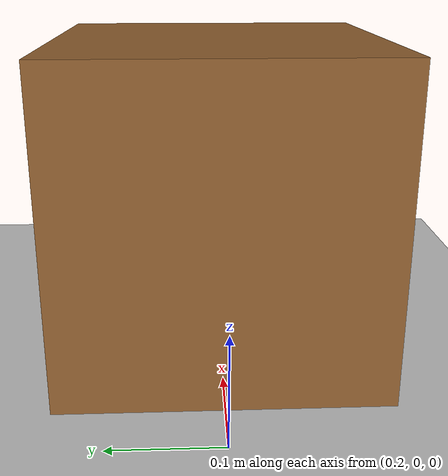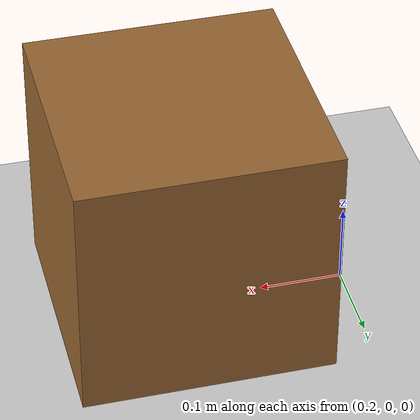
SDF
<?xml version="1.0"?>
<sdf version="1.6">
  <world name="empty_table">

    <include>
      <uri>model://ground_plane</uri>
    </include>

    <include>
      <uri>model://sun</uri>
    </include>

    <model name="table_box">
      <static>true</static>
      <pose>0.4 0.0 0.15 0 0 0</pose>
      <link name="link">
        <collision name="collision">
          <geometry>
            <box>
              <size>0.3 0.3 0.3</size>
            </box>
          </geometry>
        </collision>
        <visual name="visual">
          <geometry>
            <box>
              <size>0.3 0.3 0.3</size>
            </box>
          </geometry>
          <material>
            <ambient>0.6 0.4 0.2 1</ambient>
            <diffuse>0.6 0.4 0.2 1</diffuse>
          </material>
        </visual>
      </link>
    </model>

    <physics type="ode">
      <real_time_update_rate>1000.0</real_time_update_rate>
      <max_step_size>0.001</max_step_size>
    </physics>

  </world>
</sdf>
